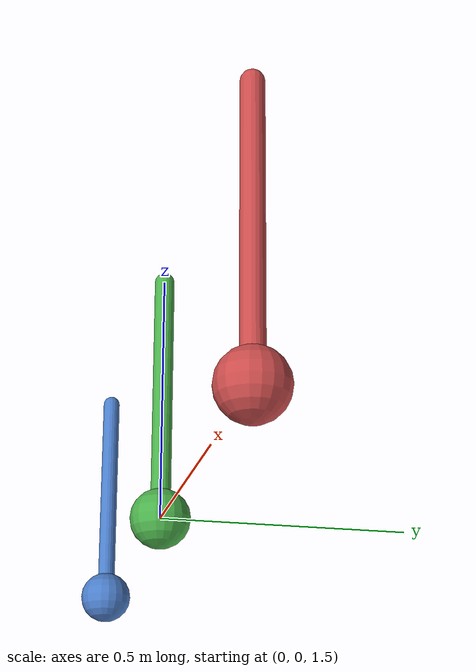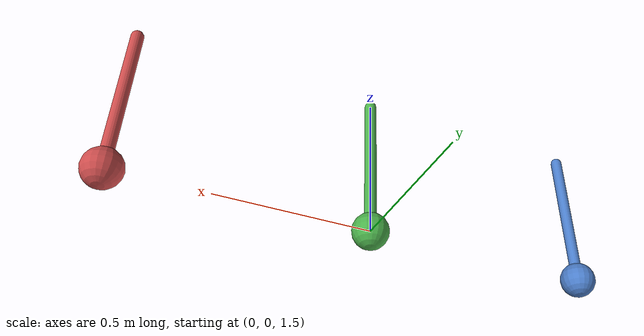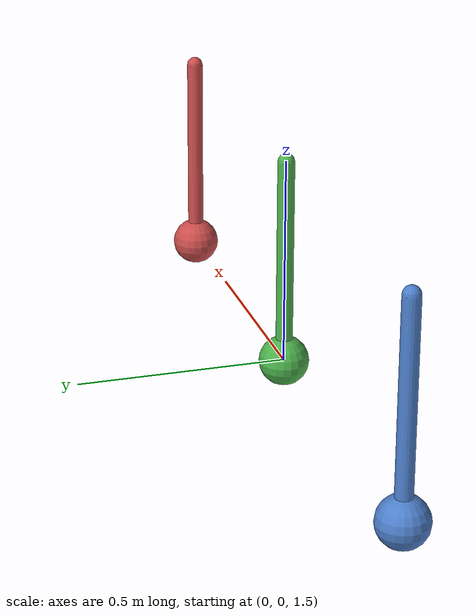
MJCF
<mujoco model="damping_friction">
  <compiler angle="radian"/>
  <option gravity="0 0 -9.81" timestep="0.002">
    <flag energy="enable"/>
  </option>
  <default>
    <geom contype="0" conaffinity="0"/>
  </default>

  <worldbody>
    <!-- No loss (blue) -->
    <body name="arm_none" pos="-0.8 0 2.0">
      <joint name="j_none" type="hinge" axis="0 1 0" limited="true" range="-3.14 3.14"/>
      <inertial pos="0 0 -0.5" mass="1.0" diaginertia="0.02 0.02 0.002"/>
      <geom type="capsule" fromto="0 0 0 0 0 -0.45" size="0.02" rgba="0.3 0.5 0.8 1"/>
      <geom type="sphere" pos="0 0 -0.5" size="0.06" rgba="0.3 0.5 0.8 1"/>
    </body>

    <!-- Damped (green) -->
    <body name="arm_damp" pos="0 0 2.0">
      <joint name="j_damp" type="hinge" axis="0 1 0" damping="0.5" limited="true" range="-3.14 3.14"/>
      <inertial pos="0 0 -0.5" mass="1.0" diaginertia="0.02 0.02 0.002"/>
      <geom type="capsule" fromto="0 0 0 0 0 -0.45" size="0.02" rgba="0.3 0.7 0.3 1"/>
      <geom type="sphere" pos="0 0 -0.5" size="0.06" rgba="0.3 0.7 0.3 1"/>
    </body>

    <!-- Friction (red) -->
    <body name="arm_fric" pos="0.8 0 2.0">
      <joint name="j_fric" type="hinge" axis="0 1 0" frictionloss="0.5" limited="true" range="-3.14 3.14"/>
      <inertial pos="0 0 -0.5" mass="1.0" diaginertia="0.02 0.02 0.002"/>
      <geom type="capsule" fromto="0 0 0 0 0 -0.45" size="0.02" rgba="0.8 0.3 0.3 1"/>
      <geom type="sphere" pos="0 0 -0.5" size="0.06" rgba="0.8 0.3 0.3 1"/>
    </body>
  </worldbody>
</mujoco>
